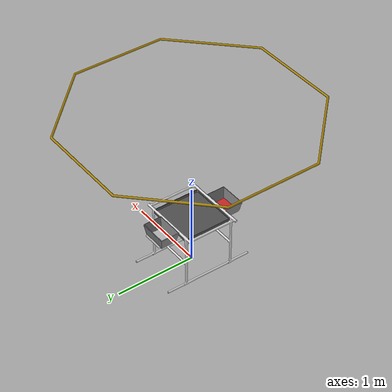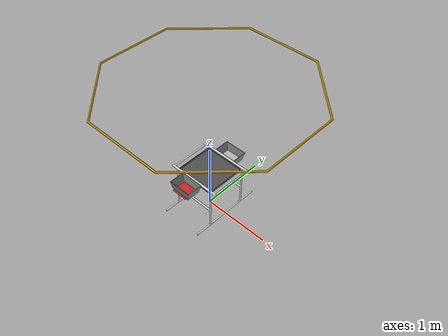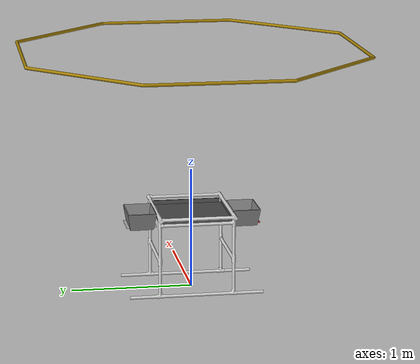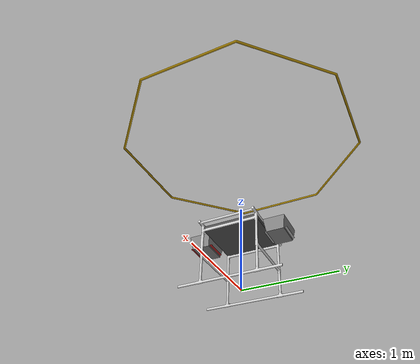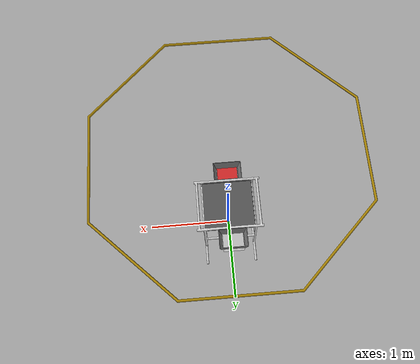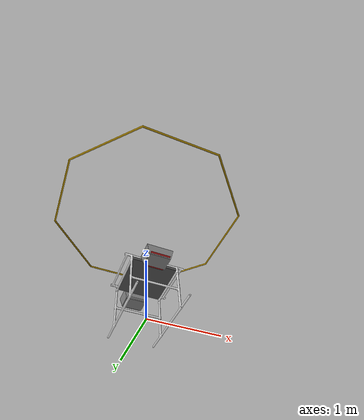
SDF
<?xml version="1.0"?>
<sdf version="1.6">
  <model name="robosub_octagon">
    <static>true</static>
    <pose>0 0 0 0 0 0</pose>
    <link name="robosub_octagon">
      <pose>0 0 0 0 0 0</pose>

      <!-- Main collision for the octagon walls -->
      <collision name="octagon_walls_col">
        <pose>0 0 0 0 0 0</pose>
        <geometry>
          <mesh>
            <uri>model://robosub_octagon/meshes/octagon.dae</uri>
          </mesh>
        </geometry>
        <surface>
          <friction>
            <ode>
              <mu>100.0</mu>
              <mu2>100.0</mu2>
              <slip1>0.0</slip1>
              <slip2>0.0</slip2>
            </ode>
          </friction>
          <bounce>
            <restitution_coefficient>0.0</restitution_coefficient>
            <threshold>100000.0</threshold>
          </bounce>
          <contact>
            <ode>
              <kp>10000000</kp>
              <kd>1000</kd>
              <max_vel>0.1</max_vel>
              <min_depth>0.001</min_depth>
            </ode>
          </contact>
        </surface>
        <max_contacts>100</max_contacts>
      </collision>

      <!-- Additional collision box for the base to prevent going under -->
      <collision name="octagon_base_col">
        <pose>0 0 -0.5 0 0 0</pose>
        <geometry>
          <box>
            <size>3.0 3.0 1.0</size>
          </box>
        </geometry>
        <surface>
          <friction>
            <ode>
              <mu>100.0</mu>
              <mu2>100.0</mu2>
            </ode>
          </friction>
        </surface>
      </collision>

      <!-- Visual representation -->
      <visual name="robosub_octagon_vis">
        <pose>0 0 0 0 0 0</pose>
        <geometry>
          <mesh>
            <uri>model://robosub_octagon/meshes/octagon.dae</uri>
          </mesh>
        </geometry>
      </visual>

      <!-- Physics properties -->
      <inertial>
        <mass>1000.0</mass>  <!-- Heavy to prevent movement -->
        <inertia>
          <ixx>1000.0</ixx>
          <iyy>1000.0</iyy>
          <izz>1000.0</izz>
          <ixy>0.0</ixy>
          <ixz>0.0</ixz>
          <iyz>0.0</iyz>
        </inertia>
      </inertial>

    </link>

    <!-- RedCross Basket Photo -->
    <link name="basket_redcross_link">
      <visual name="redcross_visual">
        <geometry>
          <plane>
            <normal>0 0 1</normal>
            <size>0.25 0.25</size>
          </plane>
        </geometry>
        <material>
          <script>
            <uri>model://robosub_octagon/materials/scripts</uri>
            <uri>model://robosub_octagon/materials/textures</uri>
            <name>OctagonRedCrossMaterial</name>
          </script>
        </material>
        <pose>0 0 0 0 0 0</pose>
      </visual>
      <pose>-0.02144 -0.431928 0.56 0 0 0</pose>
    </link>

    <!-- Warning Basket Photo -->
    <link name="basket_warning_link">
      <visual name="warning_visual">
        <geometry>
          <plane>
            <normal>0 0 1</normal>
            <size>0.25 0.25</size>
          </plane>
        </geometry>
        <material>
          <script>
            <uri>model://robosub_octagon/materials/scripts</uri>
            <uri>model://robosub_octagon/materials/textures</uri>
            <name>OctagonWarningMaterial</name>
          </script>
        </material>
        <pose>0 0 0 0 0 0</pose>
      </visual>
      <pose>-0.02144 0.431928 0.56 0 0 0</pose>
    </link>

    <!-- Table Link -->
    <link name="octagon_table_link">
      <pose>0 0 0.6245 0 0 0</pose>
    </link>

  </model>
</sdf>
